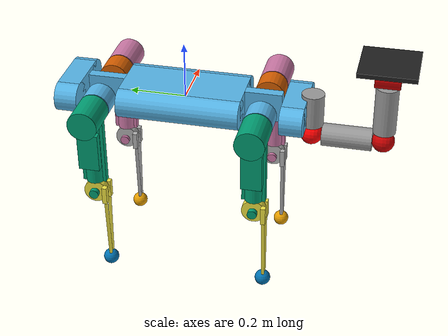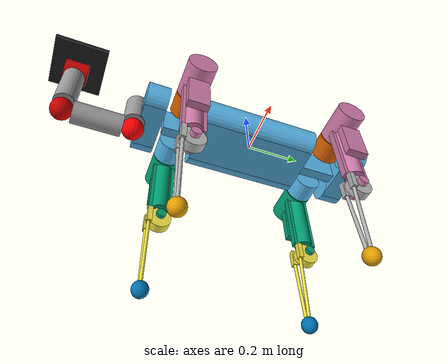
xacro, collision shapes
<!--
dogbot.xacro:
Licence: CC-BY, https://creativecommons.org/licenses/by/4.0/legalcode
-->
<?xml version="1.0"?>
<robot name="dogbot" xmlns:xacro="http://www.ros.org/wiki/xacro">

  <xacro:property name="iiwa_flange_height" value="0.04"/>

  <!-- Import Rviz colors -->
  <!--xacro:include filename="$(find lbr_iiwa_description)/urdf/materials.xacro" /-->
  <!--Import the lbr iiwa macro -->
  <xacro:include filename="$(find dogbot_description)/urdf/dogbot.xacro"/>
  <!-- Import Gazebo plugins -->
  <!--xacro:include filename="$(find lbr_iiwa_description)/gazebo/gazebo.urdf.xacro"/-->

  <!-- schunk_adapter -->
  <!--xacro:include filename="$(find schunk_adapter)/urdf/schunk_adapter.urdf.xacro"/-->

  <xacro:include filename="$(find planar_end_eff)/urdf/planar_end_eff.urdf.xacro"/>

  <!-- Fix to world just for testing -->
  <!--link name="world"/-->

  <!--lbr-->

  <!-- schunk gripper adapter -->

  <!-- end effector -->
  <xacro:planar_end_eff name="planar_end_eff" parent_link="wrist_flexion_link">
    <origin xyz="0 0 ${iiwa_flange_height}" rpy="0.0 0.0 0.0"/>
  </xacro:planar_end_eff>

</robot>

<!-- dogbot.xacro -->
<robot name="dogbot" xmlns:xacro="http://ros.org/wiki/xacro">

  <xacro:property name="collisionmesh" value="false" />

  <xacro:property name="bodyheight" value="0.105" />
  <xacro:property name="bodywidth" value="0.282" />
  <xacro:property name="bodylen" value="0.865" />

  <xacro:property name="hipoffsetside" value="0.088" /><!-- offset from body centreline to hip roll -->
  <xacro:property name="hipoffset" value="0.2875" /><!-- offset from body midpoint front/back to hip, axis-to-axis is 575mm -->
  <xacro:property name="legoffsetside" value="0.18675" /><!-- from centreline to centre/origin of upper leg -->
  <xacro:property name="upperleglen" value="0.315" />
  <xacro:property name="lowerleglen" value="0.3" />

  <xacro:property name="kp" value="1000000" />
  <xacro:property name="kd" value="1.0" />
  <!-- degrees to radians -->
  <xacro:property name="d2rad" value="0.017453" />

  <!-- Shoulder adduction link properties -->
  <xacro:property name="shoulder_adduction_radius" value="0.04" /> <!--ixx="0.00286" iyy="0.00286" izz="0.00044" -->
  <xacro:property name="shoulder_adduction_len" value="0.120" />
  <!-- Shoulder flexion link properties -->
  <xacro:property name="shoulder_flexion_radius" value="0.04" /> <!-- ixx="0.00160765 iyy="0.0016075 izz="0.00044"-->
  <!-- Humerus Rotation link properties -->
  <xacro:property name="humerus_rotation_radius" value="0.04" /> <!-- ixx="0.005834583 iyy="0.005834583 izz="0.00044"-->
  <xacro:property name="humerus_rotation_len" value="0.175" />
  <!-- Elbow Flexion link properties -->
  <xacro:property name="elbow_flexion_radius" value="0.04" /> <!-- ixx="0.00160765 iyy="0.0016075 izz="0.00044"-->
  <!-- Wrist Rotation link properties -->
  <xacro:property name="wrist_rotation_radius" value="0.04" /> <!-- ixx="0.005834583 iyy="0.005834583 izz="0.00044"-->
  <xacro:property name="wrist_rotation_len" value="0.175" />
  <!-- Wrist Flexion link properties -->
  <xacro:property name="wrist_flexion_radius" value="0.04" /> <!-- ixx="0.00160765 iyy="0.0016075 izz="0.00044"-->
  <xacro:property name="wrist_flexion_len" value="0.087" />
	<!-- Constants -->
  <xacro:property name="M_PI" value="3.14159"/>
<!-- ixx="0.005834583" iyy="0.005834583" izz="0.00044" -->
<!-- ixx="0.00160765" iyy="0.0016075" izz="0.00044"-->

    <xacro:macro name="cylinder_inertial" params="mass rad len r:=0 p:=0 yaw:=0 x:=0 y:=0 z:=0 ">
    <inertial>
      <mass value="${mass}" />
      <origin xyz="${x} ${y} ${z}" rpy="${r} ${p} ${yaw}" />
      <inertia
        ixx="${(1.0 / 12.0) * mass * (3*pow(rad, 2) + pow(len, 2))}"
        ixy="0.0"
        ixz="0.0"
        iyy="${(1.0 / 12.0) * mass* (3*pow(rad, 2) + pow(len, 2))}"
        iyz="0.0"
        izz="${(1.0 / 2.0) * mass * pow(rad, 2)}"
      />
    </inertial>
  </xacro:macro>

    <xacro:macro name="sphere_inertial" params="mass rad r:=0 p:=0 yaw:=0 x:=0 y:=0 z:=0 ">
    <inertial>
      <mass value="${mass}" />
      <origin xyz="${x} ${y} ${z}" rpy="${r} ${p} ${yaw}" />
      <inertia
        ixx="${(2.0 / 5.0) * mass* pow(rad, 2)}"
        ixy="0.0"
        ixz="0.0"
        iyy="${(2.0 / 5.0) * mass* pow(rad, 2)}"
        iyz="0.0"
        izz="${(2.0 / 5.0) * mass* pow(rad, 2)}"
      />
    </inertial>
  </xacro:macro>

	<material name="Red">
      <color rgba="0.8 0.0 0.0 1.0"/>
  </material>
  <material name="blue">
    <color rgba="0 0 0.8 1"/>
  </material>

  <material name="black">
    <color rgba="0 0 0 1"/>
  </material>

  <material name="white">
    <color rgba="1 1 1 1"/>
  </material>

  <material name="dogbotred">
    <color rgba="1 0 0 1"/>
  </material>

  <material name="dogbotgray">
    <color rgba="0.7 0.7 0.7 1"/>
  </material>

 <xacro:macro name="inertial_matrix" params="mass">
      <inertial>
      	<mass value="${mass}" />
        <inertia ixx="1.0" ixy="0.0" ixz="0.0" iyy="0.5" iyz="0.0" izz="1.0" /> <!-- parametri non calcolati da me ma
presi dal file xacro del professore Cacace. Non sono ancora ottimali perche' il robot non rimane fermo
come si vede dalla simulazione -->

      </inertial>
   </xacro:macro>

  <!-- Approximate mass distribution with a box
  set ifactor=1 for solid box, =2.0 for a thin shell -->
  <xacro:macro name="default_inertial" params="mass xSize ySize zSize x:=0 y:=0 z:=0 ifactor:=1.0">
    <inertial>
      <mass value="${mass}" />
      <origin xyz="${x} ${y} ${z}" rpy="0 0 0" />
      <inertia
        ixx="${(1.0 / 12.0) * mass * ifactor * (pow(ySize, 2) + pow(zSize, 2))}"
        ixy="0.0"
        ixz="0.0"
        iyy="${(1.0 / 12.0) * mass * ifactor * (pow(xSize, 2) + pow(zSize, 2))}"
        iyz="0.0"
        izz="${(1.0 / 12.0) * mass * ifactor * (pow(xSize, 2) + pow(ySize, 2))}"
      />
    </inertial>
  </xacro:macro>

  <!-- useful for visual-only links; need some inertia on all elements -->
  <xacro:macro name="tinymass" >
    <xacro:default_inertial mass="0.001" xSize="0.001" ySize="0.001" zSize="0.001" />
  </xacro:macro>

  <xacro:macro name="custom_inertial" params="mass x:=0 y:=0 z:=0 r:=0 p:=0 yaw:=0 ixx:=0.01 ixy:=0 ixz:=0 iyy:=0.01 iyz:=0 izz:=0.01">
    <inertial>
      <mass value="${mass}" />
      <origin xyz="${x} ${y} ${z}" rpy="${r} ${p} ${yaw}" />
      <inertia
        ixx="${ixx}" ixy="${ixy}" ixz="${ixz}"
        iyy="${iyy}" iyz="${iyz}" izz="${izz}"
      />
    </inertial>
  </xacro:macro>

  <xacro:macro name="offset_collisionbox" params="l w:=${bodywidth-bodyheight} h:=${bodyheight} x:=0 y:=0 z:=0">
    <collision>
      <origin xyz="${x} ${y} ${z}" rpy="0 0 0" />
      <geometry>
        <box size="${w} ${l} ${h}"/>
      </geometry>
    </collision>
  </xacro:macro>

  <xacro:macro name="offset_cylinder" params="l rad=${bodyheight/2} x:=0 y:=0 z:=0 r:=0 p:=0 yaw:=0" >
    <collision>
      <origin xyz="${x} ${y} ${z}" rpy="${r} ${p} ${yaw}" />
      <geometry>
        <cylinder radius="${rad}" length="${l}"/>
      </geometry>
    </collision>
  </xacro:macro>

  <xacro:macro name="offset_cylinderpair" params="l rad=${bodyheight/2} x:=${(bodywidth/2)-(bodyheight/2)} y:=0">
    <xacro:offset_cylinder l="${l}" rad="${rad}" x="${x}" y="${y}" r="${pi/2}" />
    <xacro:offset_cylinder l="${l}" rad="${rad}" x="${-x}" y="${y}" r="${pi/2}" />
  </xacro:macro>

  <!-- start the robot links -->
  <link name="base_link">
  </link>

  <link name="body">
    <visual>
      <origin xyz="0 0 0" rpy="${-0.5 * pi} 0 0" />
      <geometry>
        <mesh scale="1.0 1.0 1.0" filename="package://dogbot_description/meshes/body.dae"/>
      </geometry>
    </visual>

    <xacro:if value="${collisionmesh}">
    <collision>
      <geometry>
        <mesh scale="1.0 1.0 1.0" filename="package://dogbot_description/meshes/body.dae"/>
      </geometry>
    </collision>
    </xacro:if>
    <xacro:unless value="${collisionmesh}">
      <!-- central body -->
      <xacro:offset_collisionbox l="0.433" />
      <xacro:offset_cylinderpair l="0.433" />
      <!-- handles -->
      <xacro:offset_collisionbox l="0.132" w="0.035" y="0.2825"/>
      <xacro:offset_collisionbox l="0.132" w="0.035" y="-0.2825"/>
      <!-- ends -->
      <xacro:offset_collisionbox l="0.080" y="0.3975"/>
      <xacro:offset_cylinderpair l="0.080" y="0.3975" />
      <xacro:offset_collisionbox l="0.080" y="-0.3975"/>
      <xacro:offset_cylinderpair l="0.080" y="-0.3975" />
    </xacro:unless>

    <xacro:custom_inertial mass="9.3" ixx="0.41" iyy="0.091" izz="0.482"/>

  </link>
  <joint name="shoulder_adduction_joint" type="revolute">
    <parent link="body"/>
    <child link="shoulder_adduction_link"/>
    <origin xyz="0 -0.453 0.005" rpy="0 0 0" />
    <axis xyz="0 0 1" />
    <limit effort="300" velocity="6" lower="-6.28" upper="6.28"/>
  </joint>

  <link name="shoulder_adduction_link" >

    <visual>
      <origin xyz="0 0 0" rpy="${M_PI} 0 0" />
      <geometry>
	<cylinder radius="${shoulder_adduction_radius}" length="${shoulder_adduction_len}"/>

    </geometry>
			<material name="Gray" />

    </visual>

    <collision>
      <origin xyz="0 0 0" rpy="${M_PI} 0 0" />
      <geometry>
            <cylinder radius="${shoulder_adduction_radius}" length="${shoulder_adduction_len}"/>
      </geometry>
    </collision>
      <xacro:cylinder_inertial mass="0.5" rad="${shoulder_adduction_radius}" len="${shoulder_adduction_len}" r="${M_PI}" />
  </link>

  <gazebo reference="shoulder_adduction_link">
    <material>Gazebo/Gray</material>
  </gazebo>

  <!-- VALORI DA INSERIRE PER MODIFICARE I TENSORI DI INERZIA -->

	<xacro:property name="shoulder_flexion_mass" value="0.550" />
	<xacro:property name="ixx_sflexion" value="0.000176" /> <!-- valori che dipendono dalla massa scelta per l'esperimento -->
	<xacro:property name="iyy_sflexion" value="0.000176" />
	<xacro:property name="izz_sflexion" value="0.000176" />

	<xacro:property name="humerus_rotation_mass" value="0.550" />
	<xacro:property name="ixx_hrotation" value="0.005834583" />
	<xacro:property name="iyy_hrotation" value="0.005834583" />
	<xacro:property name="izz_hrotation" value="0.00044" />

	<xacro:property name="elbow_flexion_mass" value="0.550" />
	<xacro:property name="ixx_eflexion" value="0.000176" />
	<xacro:property name="iyy_eflexion" value="0.000176" />
	<xacro:property name="izz_eflexion" value="0.000176" />

	<xacro:property name="wrist_rotation_mass" value="0.550" />
	<xacro:property name="ixx_wrotation" value="0.005834583" />
	<xacro:property name="iyy_wrotation" value="0.005834583" />
	<xacro:property name="izz_wrotation" value="0.00044" />

	<xacro:property name="wrist_flexion_mass" value="0.550" />
	<xacro:property name="ixx_wflexion" value="0.00160765" />
	<xacro:property name="iyy_wflexion" value="0.00160765" />
	<xacro:property name="izz_wflexion" value="0.00044" />

	<joint name="shoulder_flexion_joint" type="revolute">
    <parent link="shoulder_adduction_link"/>
    <child link="shoulder_flexion_link"/>
    <origin xyz="0 0 -0.097" rpy="0 0 0" />
    <axis xyz="1 0 0" />
    <limit effort="300" velocity="6" lower="-6.28" upper="6.28" />
  </joint>

   <link name="shoulder_flexion_link" >

    <visual>
      <origin xyz="0 0 0" rpy="${M_PI/2} 0 0" />
      <geometry>
	<sphere radius="${shoulder_flexion_radius}" />

      </geometry>
      <material name="dogbotred" />
    </visual>

    <collision>
      <origin xyz="0 0 0" rpy="${M_PI/2} 0 0" />
      <geometry>
            <sphere radius="${shoulder_flexion_radius}" />
      </geometry>
    </collision>
	<xacro:sphere_inertial mass="0.5" rad="${shoulder_flexion_radius}" r="${M_PI/2}" />
  </link>

  <gazebo reference="shoulder_flexion_link">
	<visual>
    <material>
      <ambient>0.53 0.11 0.098 1 </ambient>
      <diffuse>0.53 0.11 0.098 1</diffuse>
      <specular>0.1 0.1 0.1 1</specular>
      <emissive>0 0 0 0</emissive>
    </material>
  </visual>
  </gazebo>

	<joint name="humerus_rotation_joint" type="revolute">
    <parent link="shoulder_flexion_link"/>
    <child link="humerus_rotation_link"/>
    <origin xyz="0 -0.125 0" rpy="0 0 0" />
    <axis xyz="0 -1 0" />
    <limit effort="300" velocity="6" lower="-6.28" upper="6.28" />
   </joint>

	<link name="humerus_rotation_link" >

    <visual>
      <origin xyz="0 0 0" rpy="${M_PI/2} 0 0" />
      <geometry>
	<cylinder radius="${humerus_rotation_radius}" length="${humerus_rotation_len}"/>

      </geometry>
      <material name="Gray" />
    </visual>

    <collision>
      <origin xyz="0 0 0" rpy="${M_PI/2} 0 0" />
      <geometry>
            <cylinder radius="${humerus_rotation_radius}" length="${humerus_rotation_len}"/>
      </geometry>
    </collision>
    <xacro:cylinder_inertial mass="0.5" rad="${humerus_rotation_radius}" len="${humerus_rotation_len}" r="${M_PI/2}" />
  </link>

  <gazebo reference="humerus_rotation_link">
    <material>Gazebo/Gray</material>
  </gazebo>

	<joint name="elbow_flexion_joint" type="revolute">
    <parent link="humerus_rotation_link"/>
    <child link="elbow_flexion_link"/>
    <origin xyz="0 -0.125 0" rpy="0 0 0" />
    <axis xyz="1 0 0" />
    <limit effort="300" velocity="6" lower="-6.28" upper="6.28" />
  </joint>

   <link name="elbow_flexion_link" >

    <visual>
      <origin xyz="0 0 0" rpy="${M_PI/2} 0 0" />
      <geometry>
	<sphere radius="${elbow_flexion_radius}" />

      </geometry>
      <material name="Red" />
    </visual>

    <collision>
      <origin xyz="0 0 0" rpy="${M_PI/2} 0 0" /> <!-- rotazione rispetto all'asse y di 90 gradi-->
      <geometry>
            <sphere radius="${elbow_flexion_radius}" />
      </geometry>
    </collision>
	<xacro:sphere_inertial mass="0.5" rad="${elbow_flexion_radius}" r="${M_PI/2}" />
   </link>

  <gazebo reference="elbow_flexion_link">
	<visual>

    <material>
      <ambient>0.53 0.11 0.098 1 </ambient>
      <diffuse>0.53 0.11 0.098 1</diffuse>
      <specular>0.1 0.1 0.1 1</specular>
      <emissive>0 0 0 0</emissive>
    </material>
  </visual>
  </gazebo>

	<link name="wrist_rotation_link" >

    <visual>
      <origin xyz="0 0 0" rpy="0 0 0" />
      <geometry>
	<cylinder radius="${wrist_rotation_radius}" length="${wrist_rotation_len}"/>

      </geometry>
      <material name="Gray" />
    </visual>

    <collision>
      <origin xyz="0 0 0" rpy="0 0 0" />
      <geometry>
            <cylinder radius="${wrist_rotation_radius}" length="${wrist_rotation_len}"/>
      </geometry>
    </collision>
	 <xacro:cylinder_inertial mass="0.5" rad="${wrist_rotation_radius}" len="${wrist_rotation_len}" />
  </link>

  <gazebo reference="wrist_rotation_link">
    <material>Gazebo/Gray</material>
  </gazebo>

	<joint name="wrist_rotation_joint" type="revolute">
    <parent link="elbow_flexion_link"/>
    <child link="wrist_rotation_link"/>
    <origin xyz="0 0 0.125" rpy="0 0 0" />
    <axis xyz="0 0 1" />
    <limit effort="300" velocity="6" lower="-6.28" upper="6.28"/> -->
   </joint>

	<link name="wrist_flexion_link" >

    <visual>
      <origin xyz="0 0 0" rpy="${M_PI/2} 0 0" />
      <geometry>
	<cylinder radius="${wrist_flexion_radius}" length="${wrist_flexion_len}"/>

      </geometry>
      <material name="Red" />
    </visual>

    <collision>
      <origin xyz="0 0 0" rpy="${M_PI/2} 0 0" /> <!-- rotazione rispetto all'asse y di 90 gradi-->
      <geometry>
            <cylinder radius="${wrist_flexion_radius}" length="${wrist_flexion_len}"/>
      </geometry>
    </collision>
	 <xacro:cylinder_inertial mass="0.5" rad="${wrist_flexion_radius}" len="${wrist_flexion_len}" r="${M_PI/2}" />
   </link>
	<gazebo reference="wrist_flexion_link">
	<visual>
    <material>
      <ambient>0.53 0.11 0.098 1 </ambient>
      <diffuse>0.53 0.11 0.098 1</diffuse>
      <specular>0.1 0.1 0.1 1</specular>
      <emissive>0 0 0 0</emissive>
    </material>
  </visual>
  </gazebo>

	 <joint name="wrist_flexion_joint" type="revolute">
    <parent link="wrist_rotation_link"/>
    <child link="wrist_flexion_link"/>
    <origin xyz="0 0 0.125" rpy="0 0 0" />
    <axis xyz="1 0 0" />
    <limit effort="300" velocity="6" lower="-6.28" upper="6.28" />
   </joint>

<transmission name="shoulder_adduction_transmition" >
      <type>transmission_interface/SimpleTransmission</type>
      <joint name="shoulder_adduction_joint">
        <hardwareInterface>hardware_interface/EffortJointInterface</hardwareInterface>
      </joint>
      <actuator name="shoulder_adduction_motor" >
        <hardwareInterface>hardware_interface/EffortJointInterface</hardwareInterface>
        <mechanicalReduction>1</mechanicalReduction>
      </actuator>
    </transmission>

	<transmission name="shoulder_flexion_transmition" >
      <type>transmission_interface/SimpleTransmission</type>
      <joint name="shoulder_flexion_joint">
        <hardwareInterface>hardware_interface/EffortJointInterface</hardwareInterface>
      </joint>
      <actuator name="shoulder_flexion_motor" >
        <hardwareInterface>hardware_interface/EffortJointInterface</hardwareInterface>
        <mechanicalReduction>1</mechanicalReduction>
      </actuator>
    </transmission>

 <transmission name="humerus_rotation_transmition" >
      <type>transmission_interface/SimpleTransmission</type>
      <joint name="humerus_rotation_joint">
        <hardwareInterface>hardware_interface/EffortJointInterface</hardwareInterface>
      </joint>
      <actuator name="humerus_rotation_motor" >
        <hardwareInterface>hardware_interface/EffortJointInterface</hardwareInterface>
        <mechanicalReduction>1</mechanicalReduction>
      </actuator>
    </transmission>

    <transmission name="elbow_flexion_transmition" >
      <type>transmission_interface/SimpleTransmission</type>
      <joint name="elbow_flexion_joint">
        <hardwareInterface>hardware_interface/EffortJointInterface</hardwareInterface>
      </joint>
      <actuator name="elbow_flexion_motor" >
        <hardwareInterface>hardware_interface/EffortJointInterface</hardwareInterface>
        <mechanicalReduction>1</mechanicalReduction>
      </actuator>
    </transmission>

<transmission name="wrist_rotation_transmition" >
      <type>transmission_interface/SimpleTransmission</type>
      <joint name="wrist_rotation_joint">
        <hardwareInterface>hardware_interface/EffortJointInterface</hardwareInterface>
      </joint>
      <actuator name="wrist_rotation_motor" >
        <hardwareInterface>hardware_interface/EffortJointInterface</hardwareInterface>
        <mechanicalReduction>1</mechanicalReduction>
      </actuator>
    </transmission>

<transmission name="wrist_flexion_transmition" >
      <type>transmission_interface/SimpleTransmission</type>
      <joint name="wrist_flexion_joint">
        <hardwareInterface>hardware_interface/EffortJointInterface</hardwareInterface>
      </joint>
      <actuator name="wrist_flexion_motor" >
        <hardwareInterface>hardware_interface/EffortJointInterface</hardwareInterface>
        <mechanicalReduction>1</mechanicalReduction>
      </actuator>
    </transmission>

  <joint name="base_joint" type="fixed">
    <axis xyz="0 0 0" rpy="0 0 0" />
    <parent link="base_link"/>
    <child link="body"/>
  </joint>
  <link name="bodytext">
    <visual>
      <origin xyz="0 0 0" rpy="${-0.5 * pi} 0 0" />
      <geometry>
        <mesh scale="1.0 1.0 1.0" filename="package://dogbot_description/meshes/bodyTEXT.dae"/>
      </geometry>
    </visual>
    <xacro:tinymass />
  </link>

  <joint name="bodytext_joint" type="fixed">
    <parent link="body"/>
    <child link="bodytext"/>
  </joint>

  <gazebo reference="body">
    <mu1 value="200.0"/>
    <mu2 value="100.0"/>
    <kp value="${kp}" />
    <kd value="${kd}" />

   <sensor name="base_link_contactsensor_sensor" type="contact">
        <always_on>true</always_on>
        <contact>
          <collision>base_link_fixed_joint_lump__body_collision_8</collision>
        </contact>
        <plugin name="body_plugin" filename="libgazebo_ros_bumper.so">
          <bumperTopicName>base_link_contactsensor_state</bumperTopicName>
          <frameName>world</frameName>
        </plugin>
      </sensor>

 <sensor name="base_link_contactsensor_sensor2" type="contact">
        <always_on>true</always_on>
        <contact>
          <collision>base_link_fixed_joint_lump__body_collision_9</collision>
        </contact>
        <plugin name="body_plugin2" filename="libgazebo_ros_bumper.so">
          <bumperTopicName>base_link_contactsensor_state2</bumperTopicName>
          <frameName>world</frameName>
        </plugin>
      </sensor>

 <sensor name="base_link_contactsensor_sensor3" type="contact">
        <always_on>true</always_on>
        <contact>
          <collision>base_link_fixed_joint_lump__body_collision_10</collision>
        </contact>
        <plugin name="body_plugin3" filename="libgazebo_ros_bumper.so">
          <bumperTopicName>base_link_contactsensor_state3</bumperTopicName>
          <frameName>world</frameName>
        </plugin>
      </sensor>
  </gazebo>

  <xacro:macro name="leg" params="prefix suffix reflectx reflecty">

    <link name="${prefix}_${suffix}_hip">
      <visual>
        <origin xyz="0 0 0" rpy="${-0.5 * pi} ${(reflectx-1) * 0.5 * pi} 0" />
        <geometry>
          <mesh scale="1.0 1.0 1.0" filename="package://dogbot_description/meshes/hip.dae"/>
        </geometry>
      </visual>

      <xacro:if value="${collisionmesh}">
      <collision>
        <origin xyz="0 0 0" rpy="${-0.5 * pi} ${(reflectx-1) * 0.5 * pi} 0" />
        <geometry>
          <mesh scale="1.0 1.0 1.0" filename="package://dogbot_description/meshes/hip.dae"/>
        </geometry>
      </collision>
      </xacro:if>
      <xacro:unless value="${collisionmesh}">
        <xacro:offset_cylinder l="0.08" p="${pi/2}" x="${0.02 * reflectx}"/>
      </xacro:unless>
      <xacro:custom_inertial mass="0.836" x="${0.0074 * reflectx}" ixx="0.00213" iyy="0.00147" izz="0.00172"/>

    </link>

    <!-- roll joint connects the hip to the body -->
    <joint name="${prefix}_${suffix}_roll_joint" type="revolute">
      <axis xyz="0 ${reflecty} 0" rpy="0 0 0" />
      <parent link="body"/>
      <child link="${prefix}_${suffix}_hip"/>
      <origin xyz="${hipoffsetside*reflectx} ${hipoffset * reflecty} 0" rpy="0 0 0"/>
      <limit
         lower ="${-100 * d2rad}"
         upper ="${100 * d2rad}"
         effort="60" velocity="6.0" />
    </joint>

    <link name="${prefix}_${suffix}_upperleg">
      <visual>
        <origin xyz="0 0 0" rpy="${-0.5 * pi} 0 ${ (reflectx -1) * 0.5 * pi}" />
        <geometry>
          <mesh scale="1.0 1.0 1.0" filename="package://dogbot_description/meshes/LegUpper_withCover.dae"/>
        </geometry>
      </visual>

      <xacro:if value="${collisionmesh}">
      <collision>
        <origin xyz="0 0 0" rpy="${-0.5 * pi} 0 ${ (reflectx -1) * 0.5 * pi}" />
        <geometry>
          <mesh scale="1.0 1.0 1.0" filename="package://dogbot_description/meshes/LegUpper_withCover.dae"/>
        </geometry>
      </collision>
      </xacro:if>
      <xacro:unless value="${collisionmesh}">
        <!-- upper motor housings -->
        <xacro:offset_cylinder l="0.13" p="${pi/2}" x="${0.03 * reflectx}"/>
        <!-- main leg cylinder and belt -->
        <xacro:offset_cylinder l="0.27" rad="0.033" z="-0.135"/>
        <xacro:offset_collisionbox l="0.084" w="0.025" h="0.27" z="-0.135"/>
        <!-- circuit board housing -->
        <xacro:offset_collisionbox l="0.074" w="0.026" h="0.138" x="${0.046 * reflectx}" z="-0.126"/>
        <!-- knee-joint components -->
        <xacro:offset_cylinder l="0.018" rad="0.017" z="${-upperleglen}" p="${pi/2}" x="${0.03 * reflectx}" />
        <xacro:offset_cylinder l="0.013" rad="0.017" z="${-upperleglen}" p="${pi/2}" x="${-0.036 * reflectx}" />
      </xacro:unless>

      <xacro:custom_inertial mass="1.851" x="${0.0418 * reflectx}" z="-0.0517" ixx="0.0238" iyy="0.0252" izz="0.0044"/>
    </link>

    <!-- pitch joint connects hip to upper leg -->
    <joint name="${prefix}_${suffix}_pitch_joint" type="revolute">
      <axis xyz="${reflectx} 0 0" rpy="0 0 0" />
      <parent link="${prefix}_${suffix}_hip"/>
      <child link="${prefix}_${suffix}_upperleg"/>
      <origin xyz="${(legoffsetside - hipoffsetside)*reflectx} 0 0" rpy="0 0 0"/>
      <limit
        lower ="${-0.5 * pi *(reflectx+1) + 0.25 * pi * (reflectx-1)}"
        upper="${0.25 * pi *(reflectx+1) - 0.5 * pi * (reflectx-1)}"
        effort="60"
        velocity="6.0"
      />
    </joint>

    <link name="${prefix}_${suffix}_lowerleg">
      <visual>
        <origin xyz="0 0 0" rpy="${-0.5 * pi} 0 0" />
        <geometry>
          <mesh scale="1.0 1.0 1.0" filename="package://dogbot_description/meshes/LegLower_nofoot.dae"/>
        </geometry>
      </visual>

      <xacro:if value="${collisionmesh}">
      <collision>
        <origin xyz="0 0 0" rpy="${-0.5 * pi} 0 0" />
        <geometry>
          <mesh scale="1.0 1.0 1.0" filename="package://dogbot_description/meshes/LegLower_nofoot.dae"/>
        </geometry>
      </collision>
      </xacro:if>
      <xacro:unless value="${collisionmesh}">
        <!-- knee assembly -->
        <xacro:offset_cylinder l="0.033" rad="0.042" p="${pi/2}" />
        <xacro:offset_collisionbox l="0.017" w="0.02" h="0.065" x="0.024" y="-0.0375" z="-0.0055" />
        <xacro:offset_collisionbox l="0.017" w="0.02" h="0.065" x="-0.024" y="-0.0375" z="-0.0055" />
        <!-- carbon fibre struts -->
        <xacro:offset_cylinder l="0.290" rad="0.006" p="0.04996" x="0.01575" y="-0.0375" z="-0.145" />
        <xacro:offset_cylinder l="0.290" rad="0.006" p="-0.04996" x="-0.01575" y="-0.0375" z="-0.145" />
      </xacro:unless>

      <xacro:custom_inertial mass="0.302" y="-0.029" z="-0.1439" ixx="0.00527" iyy="0.00509" izz="0.0008"/>
    </link>

    <gazebo reference="${prefix}_${suffix}_lowerleg">
      <mu1 value="2000.0"/>
      <mu2 value="1000.0"/>
      <kp value="${kp}" />
      <kd value="${kd}" />
      <selfCollide value="true" />
    </gazebo>

    <joint name="${prefix}_${suffix}_knee_joint" type="revolute">
      <axis xyz="${-1 * reflectx} 0 0" rpy="${-2*pi} 0 0" />
      <parent link="${prefix}_${suffix}_upperleg"/>
      <child link="${prefix}_${suffix}_lowerleg"/>
      <origin xyz="0 0 ${-upperleglen}" rpy="0 0 0"/>
      <limit
         lower ="${-0.01*(reflectx+1) + 150 * d2rad * (reflectx-1)/2}"
         upper ="${-0.01*(reflectx-1) + 150 * d2rad * (reflectx+1)/2}"
         effort="60" velocity="6.0"
       />
    </joint>

    <link name="${prefix}_${suffix}_foot">
      <visual>
        <origin xyz="0 0 0" rpy="${-0.5 * pi} 0 0" />
        <geometry>
          <mesh scale="1.0 1.0 1.0" filename="package://dogbot_description/meshes/foot.dae"/>
        </geometry>
      </visual>

      <xacro:if value="${collisionmesh}">
      <collision>
        <origin xyz="0 0 0" rpy="${-0.5 * pi} 0 0" />
        <geometry>
          <mesh scale="1.0 1.0 1.0" filename="package://dogbot_description/meshes/foot.dae"/>
        </geometry>
      </collision>
      </xacro:if>
      <xacro:unless value="${collisionmesh}">
        <collision>
          <origin xyz="0 -0.035 ${-lowerleglen}" rpy="0 0 0" />
          <geometry>
            <sphere radius="0.028" />
          </geometry>
        </collision>
      </xacro:unless>
      <!-- foot mass is included in lower leg link -->
      <xacro:tinymass />
    </link>

    <joint name="${prefix}_${suffix}_foot_joint" type="fixed">
      <axis xyz="0 1 0" rpy="0 0 0" />
      <parent link="${prefix}_${suffix}_lowerleg"/>
      <child link="${prefix}_${suffix}_foot"/>
      <origin xyz="0 0 0" rpy="0 0 0"/>
    </joint>

    <gazebo reference="${prefix}_${suffix}_foot">
      <mu1 value="2000.0"/>
      <mu2 value="1000.0"/>
      <kp value="${kp}" />
      <kd value="${kd}" />

 <!-- Contact Sensor -->
      <sensor name="${prefix}_${suffix}_contactsensor_sensor" type="contact">
        <always_on>true</always_on>
        <contact>
          <collision>${prefix}_${suffix}_lowerleg_fixed_joint_lump__${prefix}_${suffix}_foot_collision_5</collision>
        </contact>
        <plugin name="${prefix}_${suffix}_foot_plugin" filename="libgazebo_ros_bumper.so">
          <bumperTopicName>${prefix}_${suffix}_contactsensor_state</bumperTopicName>
          <frameName>world</frameName>
        </plugin>
      </sensor>

 </gazebo>

    <transmission name="${prefix}_${suffix}_roll_transmition" >
      <type>transmission_interface/SimpleTransmission</type>
      <joint name="${prefix}_${suffix}_roll_joint">
        <hardwareInterface>hardware_interface/EffortJointInterface</hardwareInterface>
      </joint>
      <actuator name="${prefix}_${suffix}_roll_motor" >
        <hardwareInterface>hardware_interface/EffortJointInterface</hardwareInterface>
        <mechanicalReduction>1</mechanicalReduction>
      </actuator>
    </transmission>

    <transmission name="${prefix}_${suffix}_pitch_transmition" >
      <type>transmission_interface/SimpleTransmission</type>
      <joint name="${prefix}_${suffix}_pitch_joint">
        <hardwareInterface>hardware_interface/EffortJointInterface</hardwareInterface>
      </joint>
      <actuator name="${prefix}_${suffix}_pitch_motor" >
        <hardwareInterface>hardware_interface/EffortJointInterface</hardwareInterface>
        <mechanicalReduction>1</mechanicalReduction>
      </actuator>
    </transmission>

    <transmission name="${prefix}_${suffix}_knee_transmition" >
      <type>transmission_interface/SimpleTransmission</type>
      <joint name="${prefix}_${suffix}_knee_joint">
        <hardwareInterface>hardware_interface/EffortJointInterface</hardwareInterface>
      </joint>
      <actuator name="${prefix}_${suffix}_knee_motor" >
        <hardwareInterface>hardware_interface/EffortJointInterface</hardwareInterface>
        <mechanicalReduction>1</mechanicalReduction>
      </actuator>
    </transmission>

  </xacro:macro>

  <xacro:leg prefix="back" suffix="left" reflectx="-1"  reflecty="-1"/>
  <xacro:leg prefix="back" suffix="right"  reflectx="1" reflecty="-1" />
  <xacro:leg prefix="front"  suffix="left" reflectx="-1"  reflecty="1"/>
  <xacro:leg prefix="front"  suffix="right"  reflectx="1" reflecty="1" />

  <gazebo>
    <plugin name="imu_plugin" filename="libhector_gazebo_ros_imu.so">
      <alwaysOn>true</alwaysOn>
      <bodyName>body</bodyName>
      <robotNamespace>dogbot</robotNamespace>
      <topicName>imu</topicName>
      <serviceName>imu_service</serviceName>
      <gaussianNoise>0.0</gaussianNoise>
      <updateRate>20.0</updateRate>
    </plugin>

    <plugin name="gps_plugin" filename="libhector_gazebo_ros_gps.so">
      <alwaysOn>true</alwaysOn>
      <bodyName>body</bodyName>
      <robotNamespace>dogbot</robotNamespace>
      <topicName>gps</topicName>
      <serviceName>imu_service</serviceName>
      <updateRate>100</updateRate>
      <referenceLatitude>51.5</referenceLatitude>
      <referenceLongitude>0.1278</referenceLongitude>
    </plugin>
  </gazebo>

  <!-- Gazebo plugin for ROS Control -->
   <gazebo>
    <plugin name="gazebo_ros_control" filename="libgazebo_ros_control.so">
      <robotNamespace>/dogbot</robotNamespace>
    </plugin>
  </gazebo>

</robot>

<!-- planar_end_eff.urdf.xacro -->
<robot xmlns:sensor="http://playerstage.sourceforge.net/gazebo/xmlschema/#sensor"
xmlns:controller="http://playerstage.sourceforge.net/gazebo/xmlschema/#controller"
xmlns:interface="http://playerstage.sourceforge.net/gazebo/xmlschema/#interface"
xmlns:xacro="http://www.ros.org/wiki/xacro">

  <!-- Import all Gazebo-customization elements, including Gazebo colors -->
  <xacro:include filename="$(find planar_end_eff)/urdf/planar_end_eff.gazebo.xacro" />

  <xacro:macro name="planar_end_eff_visual" params="name material">
     <visual>
       <geometry>
          <mesh filename="package://planar_end_eff/meshes/visual/${name}_visual.stl" />
       </geometry>
       <material name="${material}"/>
     </visual>
  </xacro:macro>

  <xacro:macro name="planar_end_eff_collision" params="name material">
     <collision>
       <origin rpy="0 0 0" xyz="0 0 0.008"/>
       <geometry>
	        <box size="0.2 0.2 0.016" />
          <!--mesh filename="package://planar_end_eff/meshes/collision/${name}_collision.stl" /-->
       </geometry>
       <material name="${material}"/>
     </collision>
  </xacro:macro>

  <xacro:macro name="planar_end_eff" params="parent_link name *origin">
    <joint name="${name}_fixed_base_joint" type="fixed">
       <xacro:insert_block name="origin"/>
       <child link="${name}_link" />
       <parent link="${parent_link}"/>
    </joint>

   <gazebo reference="${name}_fixed_base_joint">
     <provideFeedback>true</provideFeedback>
     <disableFixedJointLumping>true</disableFixedJointLumping>
   </gazebo>

	<!-- The ft_sensor plugin -->
   <gazebo>
      <plugin name="ft_sensor" filename="libgazebo_ros_ft_sensor.so">
      <updateRate>100.0</updateRate>
      <topicName>ft_sensor_topic</topicName>
      <jointName>planar_end_eff_fixed_base_joint</jointName>
      </plugin>
   </gazebo>

    <link name="${name}_link">
      <xacro:planar_end_eff_visual name="planar_end_eff" material="Black"/>
      <xacro:planar_end_eff_collision name="planar_end_eff" material="Black"/>

       <inertial>
        <!-- Measured mass value -->
        <mass value="1" />
        <inertia
         ixx="0.01" ixy="0.0" ixz="0.0"
         iyy="0.01" iyz="0.0"
         izz="0.1" />
      </inertial>
    </link>

    <!--Extensions -->
    <xacro:planar_end_eff_gazebo name="${name}"/>

  </xacro:macro>

</robot>
